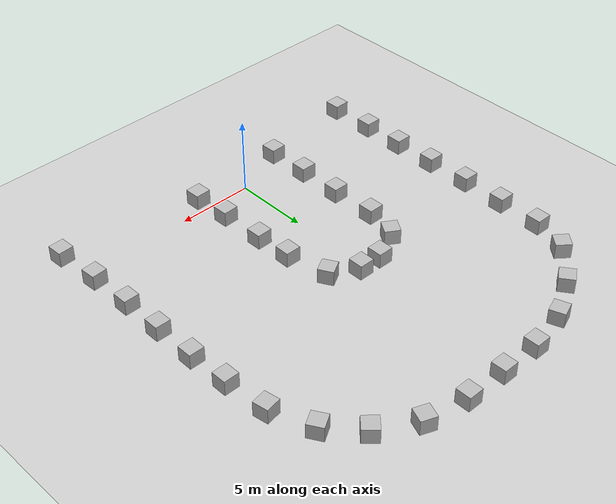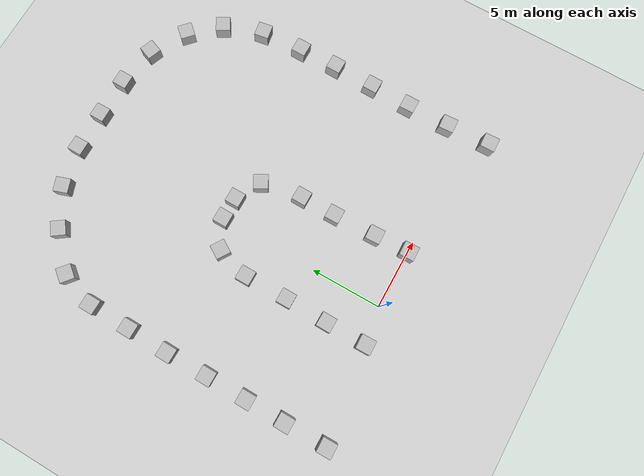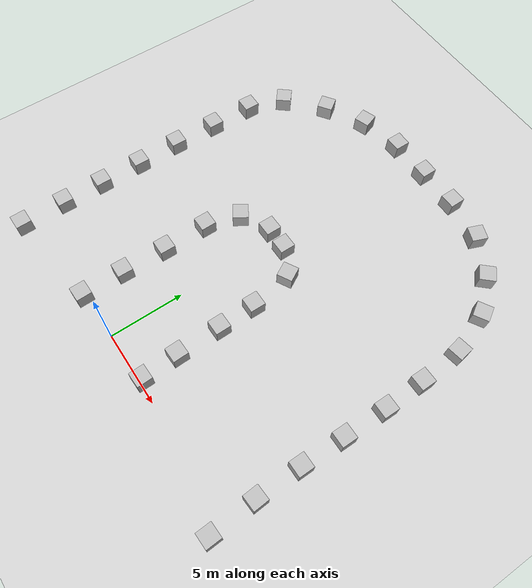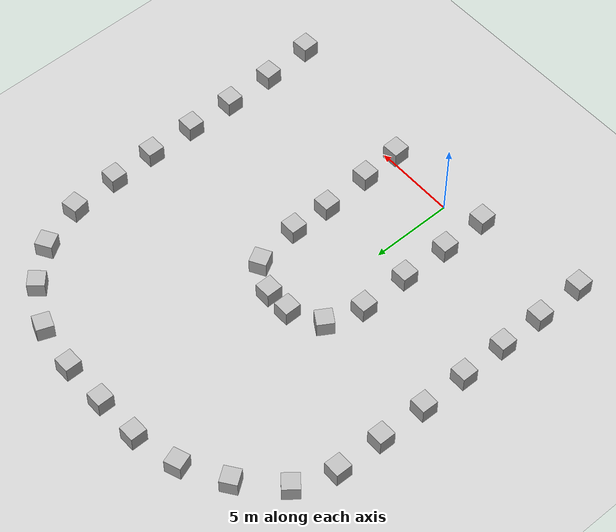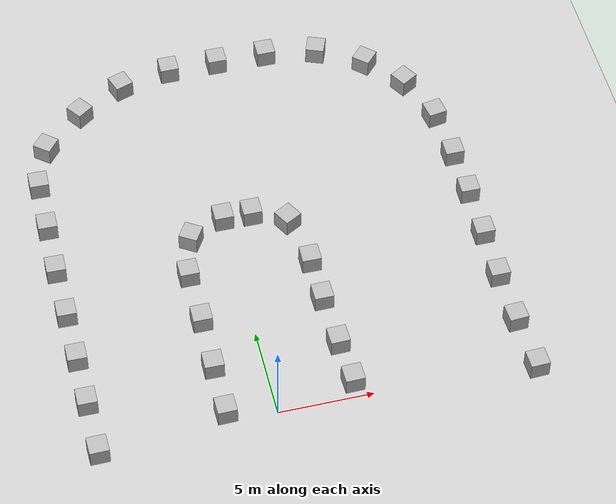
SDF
<sdf version="1.6">
 <world name="default">
  <scene><ambient>0.5 0.5 0.5 1</ambient><background>0.5 0.5 0.5 1</background><shadows>0</shadows></scene>
  <physics name="default_physics" default="0" type="ode">
   <ode>
    <solver>
     <type>quick</type>
     <iters>10</iters>
     <sor>1.3</sor>
     <use_dynamic_moi_rescaling>0</use_dynamic_moi_rescaling>
    </solver>
    <constraints>
     <cfm>0</cfm>
     <erp>0.2</erp>
     <contact_max_correcting_vel>100</contact_max_correcting_vel>
     <contact_surface_layer>0.001</contact_surface_layer>
    </constraints>
   </ode>
   <real_time_update_rate>1000</real_time_update_rate>
   <max_step_size>0.001</max_step_size>
   <real_time_factor>1</real_time_factor>
  </physics>
  <model name="ground_plane">
   <static>1</static>
   <link name="link">
    <collision name="collision">
     <geometry><plane><normal>0 0 1</normal><size>100 100</size></plane></geometry>
     <surface><friction><ode><mu>100</mu><mu2>50</mu2></ode></friction></surface>
    </collision>
    <visual name="visual">
     <cast_shadows>0</cast_shadows>
     <geometry><plane><normal>0 0 1</normal><size>100 100</size></plane></geometry>
     <material>
      <script><uri>file://media/materials/scripts/gazebo.material</uri><name>Gazebo/Grey</name></script>
     </material>
    </visual>
   </link>
  </model>
  <light name="my_light" type="directional">
   <pose>0 0 30 0 -0 0</pose>
   <diffuse>0.5 0.5 0.5 1</diffuse>
   <specular>0.1 0.1 0.1 1</specular>
   <attenuation><range>200</range></attenuation>
   <direction>0 0 -1</direction>
   <cast_shadows>0</cast_shadows>
  </light>
  <gravity>0 0 -9.8</gravity>
  <magnetic_field>6e-06 2.3e-05 -4.2e-05</magnetic_field>
  <atmosphere type="adiabatic"/>
  <spherical_coordinates>
   <surface_model>EARTH_WGS84</surface_model>
   <latitude_deg>0</latitude_deg>
   <longitude_deg>0</longitude_deg>
   <elevation>0</elevation>
   <heading_deg>0</heading_deg>
  </spherical_coordinates>
  <model name="brick_box_3x1x3">
   <static>1</static>
   <link name="chassis">
    <pose>0 0 1.5 0 -0 0</pose>
    <collision name="collision"><geometry><box><size>3 1 3</size></box></geometry></collision>
    <visual name="visual">
     <geometry><mesh><uri>model://brick_box_3x1x3/meshes/simple_box.dae</uri><scale>1 1 1</scale></mesh></geometry>
     <material>
      <script>
       <uri>model://brick_box_3x1x3/materials/scripts</uri>
       <uri>model://brick_box_3x1x3/materials/textures</uri>
       <name>BrickBox/Diffuse</name>
      </script>
     </material>
    </visual>
   </link>
   <pose>13.1315 -1.1146 0 0 0 -1.53035</pose>
  </model>
  <model name="brick_box_3x1x3_clone">
   <static>1</static>
   <link name="chassis">
    <pose>0 0 1.5 0 -0 0</pose>
    <collision name="collision"><geometry><box><size>3 1 3</size></box></geometry></collision>
    <visual name="visual">
     <geometry><mesh><uri>model://brick_box_3x1x3/meshes/simple_box.dae</uri><scale>1 1 1</scale></mesh></geometry>
     <material>
      <script>
       <uri>model://brick_box_3x1x3/materials/scripts</uri>
       <uri>model://brick_box_3x1x3/materials/textures</uri>
       <name>BrickBox/Diffuse</name>
      </script>
     </material>
    </visual>
   </link>
   <pose>3.90947 0.17505 0 0 0 -1.54584</pose>
  </model>
  <model name="brick_box_3x1x3_clone_0">
   <static>1</static>
   <link name="chassis">
    <pose>0 0 1.5 0 -0 0</pose>
    <collision name="collision"><geometry><box><size>3 1 3</size></box></geometry></collision>
    <visual name="visual">
     <geometry><mesh><uri>model://brick_box_3x1x3/meshes/simple_box.dae</uri><scale>1 1 1</scale></mesh></geometry>
     <material>
      <script>
       <uri>model://brick_box_3x1x3/materials/scripts</uri>
       <uri>model://brick_box_3x1x3/materials/textures</uri>
       <name>BrickBox/Diffuse</name>
      </script>
     </material>
    </visual>
   </link>
   <pose>-2.70574 -0.187416 0 0 0 -1.55133</pose>
  </model>
  <model name="brick_box_3x1x3_clone_1">
   <static>1</static>
   <link name="chassis">
    <pose>0 0 1.5 0 -0 0</pose>
    <collision name="collision"><geometry><box><size>3 1 3</size></box></geometry></collision>
    <visual name="visual">
     <geometry><mesh><uri>model://brick_box_3x1x3/meshes/simple_box.dae</uri><scale>1 1 1</scale></mesh></geometry>
     <material>
      <script>
       <uri>model://brick_box_3x1x3/materials/scripts</uri>
       <uri>model://brick_box_3x1x3/materials/textures</uri>
       <name>BrickBox/Diffuse</name>
      </script>
     </material>
    </visual>
   </link>
   <pose>-2.72413 2.6255 0 0 0 -1.58356</pose>
  </model>
  <model name="brick_box_3x1x3_clone_2">
   <static>1</static>
   <link name="chassis">
    <pose>0 0 1.5 0 -0 0</pose>
    <collision name="collision"><geometry><box><size>3 1 3</size></box></geometry></collision>
    <visual name="visual">
     <geometry><mesh><uri>model://brick_box_3x1x3/meshes/simple_box.dae</uri><scale>1 1 1</scale></mesh></geometry>
     <material>
      <script>
       <uri>model://brick_box_3x1x3/materials/scripts</uri>
       <uri>model://brick_box_3x1x3/materials/textures</uri>
       <name>BrickBox/Diffuse</name>
      </script>
     </material>
    </visual>
   </link>
   <pose>3.76872 2.61148 0 0 -0 1.60051</pose>
  </model>
  <model name="brick_box_3x1x3_clone_3">
   <static>1</static>
   <link name="chassis">
    <pose>0 0 1.5 0 -0 0</pose>
    <collision name="collision"><geometry><box><size>3 1 3</size></box></geometry></collision>
    <visual name="visual">
     <geometry><mesh><uri>model://brick_box_3x1x3/meshes/simple_box.dae</uri><scale>1 1 1</scale></mesh></geometry>
     <material>
      <script>
       <uri>model://brick_box_3x1x3/materials/scripts</uri>
       <uri>model://brick_box_3x1x3/materials/textures</uri>
       <name>BrickBox/Diffuse</name>
      </script>
     </material>
    </visual>
   </link>
   <pose>-2.67741 5.57158 0 0 0 -1.57465</pose>
  </model>
  <model name="brick_box_3x1x3_clone_4">
   <static>1</static>
   <link name="chassis">
    <pose>0 0 1.5 0 -0 0</pose>
    <collision name="collision"><geometry><box><size>3 1 3</size></box></geometry></collision>
    <visual name="visual">
     <geometry><mesh><uri>model://brick_box_3x1x3/meshes/simple_box.dae</uri><scale>1 1 1</scale></mesh></geometry>
     <material>
      <script>
       <uri>model://brick_box_3x1x3/materials/scripts</uri>
       <uri>model://brick_box_3x1x3/materials/textures</uri>
       <name>BrickBox/Diffuse</name>
      </script>
     </material>
    </visual>
   </link>
   <pose>3.67697 5.55272 -0.081914 0 0 -1.56055</pose>
  </model>
  <model name="brick_box_3x1x3_clone_5">
   <static>1</static>
   <link name="chassis">
    <pose>0 0 1.5 0 -0 0</pose>
    <collision name="collision"><geometry><box><size>3 1 3</size></box></geometry></collision>
    <visual name="visual">
     <geometry><mesh><uri>model://brick_box_3x1x3/meshes/simple_box.dae</uri><scale>1 1 1</scale></mesh></geometry>
     <material>
      <script>
       <uri>model://brick_box_3x1x3/materials/scripts</uri>
       <uri>model://brick_box_3x1x3/materials/textures</uri>
       <name>BrickBox/Diffuse</name>
      </script>
     </material>
    </visual>
   </link>
   <pose>-2.7111 8.56109 0 0 0 -1.56966</pose>
  </model>
  <model name="brick_box_3x1x3_clone_6">
   <static>1</static>
   <link name="chassis">
    <pose>0 0 1.5 0 -0 0</pose>
    <collision name="collision"><geometry><box><size>3 1 3</size></box></geometry></collision>
    <visual name="visual">
     <geometry><mesh><uri>model://brick_box_3x1x3/meshes/simple_box.dae</uri><scale>1 1 1</scale></mesh></geometry>
     <material>
      <script>
       <uri>model://brick_box_3x1x3/materials/scripts</uri>
       <uri>model://brick_box_3x1x3/materials/textures</uri>
       <name>BrickBox/Diffuse</name>
      </script>
     </material>
    </visual>
   </link>
   <pose>-0.165451 11.7708 0 0 -0 0</pose>
  </model>
  <model name="brick_box_3x1x3_clone_7">
   <static>1</static>
   <link name="chassis">
    <pose>0 0 1.5 0 -0 0</pose>
    <collision name="collision"><geometry><box><size>3 1 3</size></box></geometry></collision>
    <visual name="visual">
     <geometry><mesh><uri>model://brick_box_3x1x3/meshes/simple_box.dae</uri><scale>1 1 1</scale></mesh></geometry>
     <material>
      <script>
       <uri>model://brick_box_3x1x3/materials/scripts</uri>
       <uri>model://brick_box_3x1x3/materials/textures</uri>
       <name>BrickBox/Diffuse</name>
      </script>
     </material>
    </visual>
   </link>
   <pose>-2.07364 10.8262 0 0 -0 1.00941</pose>
  </model>
  <model name="brick_box_3x1x3_clone_8">
   <static>1</static>
   <link name="chassis">
    <pose>0 0 1.5 0 -0 0</pose>
    <collision name="collision"><geometry><box><size>3 1 3</size></box></geometry></collision>
    <visual name="visual">
     <geometry><mesh><uri>model://brick_box_3x1x3/meshes/simple_box.dae</uri><scale>1 1 1</scale></mesh></geometry>
     <material>
      <script>
       <uri>model://brick_box_3x1x3/materials/scripts</uri>
       <uri>model://brick_box_3x1x3/materials/textures</uri>
       <name>BrickBox/Diffuse</name>
      </script>
     </material>
    </visual>
   </link>
   <pose>1.36582 11.7477 0 0 -0 0</pose>
  </model>
  <model name="brick_box_3x1x3_clone_9">
   <static>1</static>
   <link name="chassis">
    <pose>0 0 1.5 0 -0 0</pose>
    <collision name="collision"><geometry><box><size>3 1 3</size></box></geometry></collision>
    <visual name="visual">
     <geometry><mesh><uri>model://brick_box_3x1x3/meshes/simple_box.dae</uri><scale>1 1 1</scale></mesh></geometry>
     <material>
      <script>
       <uri>model://brick_box_3x1x3/materials/scripts</uri>
       <uri>model://brick_box_3x1x3/materials/textures</uri>
       <name>BrickBox/Diffuse</name>
      </script>
     </material>
    </visual>
   </link>
   <pose>3.13354 10.8304 0 0 0 -1.0654</pose>
  </model>
  <model name="brick_box_3x1x3_clone_10">
   <static>1</static>
   <link name="chassis">
    <pose>0 0 1.5 0 -0 0</pose>
    <collision name="collision"><geometry><box><size>3 1 3</size></box></geometry></collision>
    <visual name="visual">
     <geometry><mesh><uri>model://brick_box_3x1x3/meshes/simple_box.dae</uri><scale>1 1 1</scale></mesh></geometry>
     <material>
      <script>
       <uri>model://brick_box_3x1x3/materials/scripts</uri>
       <uri>model://brick_box_3x1x3/materials/textures</uri>
       <name>BrickBox/Diffuse</name>
      </script>
     </material>
    </visual>
   </link>
   <pose>3.64045 8.00214 0 0 -0 1.56025</pose>
  </model>
  <model name="brick_box_3x1x3_clone_11">
   <static>1</static>
   <link name="chassis">
    <pose>0 0 1.5 0 -0 0</pose>
    <collision name="collision"><geometry><box><size>3 1 3</size></box></geometry></collision>
    <visual name="visual">
     <geometry><mesh><uri>model://brick_box_3x1x3/meshes/simple_box.dae</uri><scale>1 1 1</scale></mesh></geometry>
     <material>
      <script>
       <uri>model://brick_box_3x1x3/materials/scripts</uri>
       <uri>model://brick_box_3x1x3/materials/textures</uri>
       <name>BrickBox/Diffuse</name>
      </script>
     </material>
    </visual>
   </link>
   <pose>-9.28795 -1.02948 0 0 0 -1.55622</pose>
  </model>
  <model name="brick_box_3x1x3_clone_12">
   <static>1</static>
   <link name="chassis">
    <pose>0 0 1.5 0 -0 0</pose>
    <collision name="collision"><geometry><box><size>3 1 3</size></box></geometry></collision>
    <visual name="visual">
     <geometry><mesh><uri>model://brick_box_3x1x3/meshes/simple_box.dae</uri><scale>1 1 1</scale></mesh></geometry>
     <material>
      <script>
       <uri>model://brick_box_3x1x3/materials/scripts</uri>
       <uri>model://brick_box_3x1x3/materials/textures</uri>
       <name>BrickBox/Diffuse</name>
      </script>
     </material>
    </visual>
   </link>
   <pose>-9.31188 1.92363 0 0 0 -1.5798</pose>
  </model>
  <model name="brick_box_3x1x3_clone_13">
   <static>1</static>
   <link name="chassis">
    <pose>0 0 1.5 0 -0 0</pose>
    <collision name="collision"><geometry><box><size>3 1 3</size></box></geometry></collision>
    <visual name="visual">
     <geometry><mesh><uri>model://brick_box_3x1x3/meshes/simple_box.dae</uri><scale>1 1 1</scale></mesh></geometry>
     <material>
      <script>
       <uri>model://brick_box_3x1x3/materials/scripts</uri>
       <uri>model://brick_box_3x1x3/materials/textures</uri>
       <name>BrickBox/Diffuse</name>
      </script>
     </material>
    </visual>
   </link>
   <pose>-9.31416 4.67787 0 0 0 -1.57792</pose>
  </model>
  <model name="brick_box_3x1x3_clone_14">
   <static>1</static>
   <link name="chassis">
    <pose>0 0 1.5 0 -0 0</pose>
    <collision name="collision"><geometry><box><size>3 1 3</size></box></geometry></collision>
    <visual name="visual">
     <geometry><mesh><uri>model://brick_box_3x1x3/meshes/simple_box.dae</uri><scale>1 1 1</scale></mesh></geometry>
     <material>
      <script>
       <uri>model://brick_box_3x1x3/materials/scripts</uri>
       <uri>model://brick_box_3x1x3/materials/textures</uri>
       <name>BrickBox/Diffuse</name>
      </script>
     </material>
    </visual>
   </link>
   <pose>-9.32261 7.51426 0 0 -0 1.56158</pose>
  </model>
  <model name="brick_box_3x1x3_clone_15">
   <static>1</static>
   <link name="chassis">
    <pose>0 0 1.5 0 -0 0</pose>
    <collision name="collision"><geometry><box><size>3 1 3</size></box></geometry></collision>
    <visual name="visual">
     <geometry><mesh><uri>model://brick_box_3x1x3/meshes/simple_box.dae</uri><scale>1 1 1</scale></mesh></geometry>
     <material>
      <script>
       <uri>model://brick_box_3x1x3/materials/scripts</uri>
       <uri>model://brick_box_3x1x3/materials/textures</uri>
       <name>BrickBox/Diffuse</name>
      </script>
     </material>
    </visual>
   </link>
   <pose>-8.37942 18.6302 0 0 -0 0.882636</pose>
  </model>
  <model name="brick_box_3x1x3_clone_16">
   <static>1</static>
   <link name="chassis">
    <pose>0 0 1.5 0 -0 0</pose>
    <collision name="collision"><geometry><box><size>3 1 3</size></box></geometry></collision>
    <visual name="visual">
     <geometry><mesh><uri>model://brick_box_3x1x3/meshes/simple_box.dae</uri><scale>1 1 1</scale></mesh></geometry>
     <material>
      <script>
       <uri>model://brick_box_3x1x3/materials/scripts</uri>
       <uri>model://brick_box_3x1x3/materials/textures</uri>
       <name>BrickBox/Diffuse</name>
      </script>
     </material>
    </visual>
   </link>
   <pose>-6.14873 20.6944 0 0 -0 0.615237</pose>
  </model>
  <model name="brick_box_3x1x3_clone_17">
   <static>1</static>
   <link name="chassis">
    <pose>0 0 1.5 0 -0 0</pose>
    <collision name="collision"><geometry><box><size>3 1 3</size></box></geometry></collision>
    <visual name="visual">
     <geometry><mesh><uri>model://brick_box_3x1x3/meshes/simple_box.dae</uri><scale>1 1 1</scale></mesh></geometry>
     <material>
      <script>
       <uri>model://brick_box_3x1x3/materials/scripts</uri>
       <uri>model://brick_box_3x1x3/materials/textures</uri>
       <name>BrickBox/Diffuse</name>
      </script>
     </material>
    </visual>
   </link>
   <pose>1.90693 22.7178 0 0 -0 0</pose>
  </model>
  <model name="brick_box_3x1x3_clone_18">
   <static>1</static>
   <link name="chassis">
    <pose>0 0 1.5 0 -0 0</pose>
    <collision name="collision"><geometry><box><size>3 1 3</size></box></geometry></collision>
    <visual name="visual">
     <geometry><mesh><uri>model://brick_box_3x1x3/meshes/simple_box.dae</uri><scale>1 1 1</scale></mesh></geometry>
     <material>
      <script>
       <uri>model://brick_box_3x1x3/materials/scripts</uri>
       <uri>model://brick_box_3x1x3/materials/textures</uri>
       <name>BrickBox/Diffuse</name>
      </script>
     </material>
    </visual>
   </link>
   <pose>7.50548 22.2221 0 0 0 -0.37115</pose>
  </model>
  <model name="brick_box_3x1x3_clone_19">
   <static>1</static>
   <link name="chassis">
    <pose>0 0 1.5 0 -0 0</pose>
    <collision name="collision"><geometry><box><size>3 1 3</size></box></geometry></collision>
    <visual name="visual">
     <geometry><mesh><uri>model://brick_box_3x1x3/meshes/simple_box.dae</uri><scale>1 1 1</scale></mesh></geometry>
     <material>
      <script>
       <uri>model://brick_box_3x1x3/materials/scripts</uri>
       <uri>model://brick_box_3x1x3/materials/textures</uri>
       <name>BrickBox/Diffuse</name>
      </script>
     </material>
    </visual>
   </link>
   <pose>12.877 13.2526 0 0 0 -1.56909</pose>
  </model>
  <model name="brick_box_3x1x3_clone_20">
   <static>1</static>
   <link name="chassis">
    <pose>0 0 1.5 0 -0 0</pose>
    <collision name="collision"><geometry><box><size>3 1 3</size></box></geometry></collision>
    <visual name="visual">
     <geometry><mesh><uri>model://brick_box_3x1x3/meshes/simple_box.dae</uri><scale>1 1 1</scale></mesh></geometry>
     <material>
      <script>
       <uri>model://brick_box_3x1x3/materials/scripts</uri>
       <uri>model://brick_box_3x1x3/materials/textures</uri>
       <name>BrickBox/Diffuse</name>
      </script>
     </material>
    </visual>
   </link>
   <pose>12.9512 10.5478 0 0 0 -1.58052</pose>
  </model>
  <model name="brick_box_3x1x3_clone_21">
   <static>1</static>
   <link name="chassis">
    <pose>0 0 1.5 0 -0 0</pose>
    <collision name="collision"><geometry><box><size>3 1 3</size></box></geometry></collision>
    <visual name="visual">
     <geometry><mesh><uri>model://brick_box_3x1x3/meshes/simple_box.dae</uri><scale>1 1 1</scale></mesh></geometry>
     <material>
      <script>
       <uri>model://brick_box_3x1x3/materials/scripts</uri>
       <uri>model://brick_box_3x1x3/materials/textures</uri>
       <name>BrickBox/Diffuse</name>
      </script>
     </material>
    </visual>
   </link>
   <pose>12.9444 7.68726 0 0.01063 0.008909 -1.57535</pose>
  </model>
  <model name="brick_box_3x1x3_clone_22">
   <static>1</static>
   <link name="chassis">
    <pose>0 0 1.5 0 -0 0</pose>
    <collision name="collision"><geometry><box><size>3 1 3</size></box></geometry></collision>
    <visual name="visual">
     <geometry><mesh><uri>model://brick_box_3x1x3/meshes/simple_box.dae</uri><scale>1 1 1</scale></mesh></geometry>
     <material>
      <script>
       <uri>model://brick_box_3x1x3/materials/scripts</uri>
       <uri>model://brick_box_3x1x3/materials/textures</uri>
       <name>BrickBox/Diffuse</name>
      </script>
     </material>
    </visual>
   </link>
   <pose>12.8899 4.83054 0 0 0 -1.56423</pose>
  </model>
  <model name="brick_box_3x1x3_clone_23">
   <static>1</static>
   <link name="chassis">
    <pose>0 0 1.5 0 -0 0</pose>
    <collision name="collision"><geometry><box><size>3 1 3</size></box></geometry></collision>
    <visual name="visual">
     <geometry><mesh><uri>model://brick_box_3x1x3/meshes/simple_box.dae</uri><scale>1 1 1</scale></mesh></geometry>
     <material>
      <script>
       <uri>model://brick_box_3x1x3/materials/scripts</uri>
       <uri>model://brick_box_3x1x3/materials/textures</uri>
       <name>BrickBox/Diffuse</name>
      </script>
     </material>
    </visual>
   </link>
   <pose>12.9405 1.88352 0 0 0 -1.50942</pose>
  </model>
  <model name="brick_box_3x1x3_clone_24">
   <static>1</static>
   <link name="chassis">
    <pose>0 0 1.5 0 -0 0</pose>
    <collision name="collision"><geometry><box><size>3 1 3</size></box></geometry></collision>
    <visual name="visual">
     <geometry><mesh><uri>model://brick_box_3x1x3/meshes/simple_box.dae</uri><scale>1 1 1</scale></mesh></geometry>
     <material>
      <script>
       <uri>model://brick_box_3x1x3/materials/scripts</uri>
       <uri>model://brick_box_3x1x3/materials/textures</uri>
       <name>BrickBox/Diffuse</name>
      </script>
     </material>
    </visual>
   </link>
   <pose>-9.35211 10.4076 0 0 -0 1.55008</pose>
  </model>
  <model name="brick_box_3x1x3_clone_25">
   <static>1</static>
   <link name="chassis">
    <pose>0 0 1.5 0 -0 0</pose>
    <collision name="collision"><geometry><box><size>3 1 3</size></box></geometry></collision>
    <visual name="visual">
     <geometry><mesh><uri>model://brick_box_3x1x3/meshes/simple_box.dae</uri><scale>1 1 1</scale></mesh></geometry>
     <material>
      <script>
       <uri>model://brick_box_3x1x3/materials/scripts</uri>
       <uri>model://brick_box_3x1x3/materials/textures</uri>
       <name>BrickBox/Diffuse</name>
      </script>
     </material>
    </visual>
   </link>
   <pose>-9.28252 13.3156 0 0 -0 1.55818</pose>
  </model>
  <model name="brick_box_3x1x3_clone_26">
   <static>1</static>
   <link name="chassis">
    <pose>0 0 1.5 0 -0 0</pose>
    <collision name="collision"><geometry><box><size>3 1 3</size></box></geometry></collision>
    <visual name="visual">
     <geometry><mesh><uri>model://brick_box_3x1x3/meshes/simple_box.dae</uri><scale>1 1 1</scale></mesh></geometry>
     <material>
      <script>
       <uri>model://brick_box_3x1x3/materials/scripts</uri>
       <uri>model://brick_box_3x1x3/materials/textures</uri>
       <name>BrickBox/Diffuse</name>
      </script>
     </material>
    </visual>
   </link>
   <pose>-9.22047 16.2002 0 0 -0 1.55286</pose>
  </model>
  <model name="brick_box_3x1x3_clone_27">
   <static>1</static>
   <link name="chassis">
    <pose>0 0 1.5 0 -0 0</pose>
    <collision name="collision"><geometry><box><size>3 1 3</size></box></geometry></collision>
    <visual name="visual">
     <geometry><mesh><uri>model://brick_box_3x1x3/meshes/simple_box.dae</uri><scale>1 1 1</scale></mesh></geometry>
     <material>
      <script>
       <uri>model://brick_box_3x1x3/materials/scripts</uri>
       <uri>model://brick_box_3x1x3/materials/textures</uri>
       <name>BrickBox/Diffuse</name>
      </script>
     </material>
    </visual>
   </link>
   <pose>-3.61132 22.0991 0 0 -0 0.335094</pose>
  </model>
  <model name="brick_box_3x1x3_clone_28">
   <static>1</static>
   <link name="chassis">
    <pose>0 0 1.5 0 -0 0</pose>
    <collision name="collision"><geometry><box><size>3 1 3</size></box></geometry></collision>
    <visual name="visual">
     <geometry><mesh><uri>model://brick_box_3x1x3/meshes/simple_box.dae</uri><scale>1 1 1</scale></mesh></geometry>
     <material>
      <script>
       <uri>model://brick_box_3x1x3/materials/scripts</uri>
       <uri>model://brick_box_3x1x3/materials/textures</uri>
       <name>BrickBox/Diffuse</name>
      </script>
     </material>
    </visual>
   </link>
   <pose>-0.805614 22.7 0 0 -0 0</pose>
  </model>
  <model name="brick_box_3x1x3_clone_29">
   <static>1</static>
   <link name="chassis">
    <pose>0 0 1.5 0 -0 0</pose>
    <collision name="collision"><geometry><box><size>3 1 3</size></box></geometry></collision>
    <visual name="visual">
     <geometry><mesh><uri>model://brick_box_3x1x3/meshes/simple_box.dae</uri><scale>1 1 1</scale></mesh></geometry>
     <material>
      <script>
       <uri>model://brick_box_3x1x3/materials/scripts</uri>
       <uri>model://brick_box_3x1x3/materials/textures</uri>
       <name>BrickBox/Diffuse</name>
      </script>
     </material>
    </visual>
   </link>
   <pose>4.67313 22.6896 0 0 -0 0</pose>
  </model>
  <model name="brick_box_3x1x3_clone_30">
   <static>1</static>
   <link name="chassis">
    <pose>0 0 1.5 0 -0 0</pose>
    <collision name="collision"><geometry><box><size>3 1 3</size></box></geometry></collision>
    <visual name="visual">
     <geometry><mesh><uri>model://brick_box_3x1x3/meshes/simple_box.dae</uri><scale>1 1 1</scale></mesh></geometry>
     <material>
      <script>
       <uri>model://brick_box_3x1x3/materials/scripts</uri>
       <uri>model://brick_box_3x1x3/materials/textures</uri>
       <name>BrickBox/Diffuse</name>
      </script>
     </material>
    </visual>
   </link>
   <pose>9.94548 20.8144 0 0 0 -0.74476</pose>
  </model>
  <model name="brick_box_3x1x3_clone_31">
   <static>1</static>
   <link name="chassis">
    <pose>0 0 1.5 0 -0 0</pose>
    <collision name="collision"><geometry><box><size>3 1 3</size></box></geometry></collision>
    <visual name="visual">
     <geometry><mesh><uri>model://brick_box_3x1x3/meshes/simple_box.dae</uri><scale>1 1 1</scale></mesh></geometry>
     <material>
      <script>
       <uri>model://brick_box_3x1x3/materials/scripts</uri>
       <uri>model://brick_box_3x1x3/materials/textures</uri>
       <name>BrickBox/Diffuse</name>
      </script>
     </material>
    </visual>
   </link>
   <pose>11.6721 18.8525 0 0 0 -1.03579</pose>
  </model>
  <model name="brick_box_3x1x3_clone_32">
   <static>1</static>
   <link name="chassis">
    <pose>0 0 1.5 0 -0 0</pose>
    <collision name="collision"><geometry><box><size>3 1 3</size></box></geometry></collision>
    <visual name="visual">
     <geometry><mesh><uri>model://brick_box_3x1x3/meshes/simple_box.dae</uri><scale>1 1 1</scale></mesh></geometry>
     <material>
      <script>
       <uri>model://brick_box_3x1x3/materials/scripts</uri>
       <uri>model://brick_box_3x1x3/materials/textures</uri>
       <name>BrickBox/Diffuse</name>
      </script>
     </material>
    </visual>
   </link>
   <pose>12.6721 16.1551 0 0 0 -1.40583</pose>
  </model>
 </world>
</sdf>
